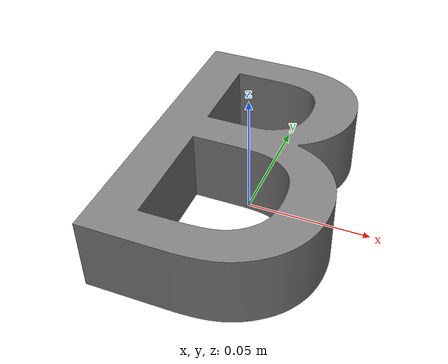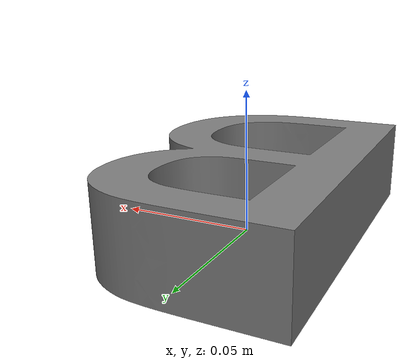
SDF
<?xml version="1.0"?>
<sdf version="1.8">
  <model name="alphabet_B">
    <static>false</static>
    <link name="link">
      <inertial>
        <pose>0 0 0.015 0 0 0</pose>
        <mass>0.02</mass>
        <inertia>
          <ixx>1.0e-5</ixx>
          <iyy>1.0e-5</iyy>
          <izz>1.0e-5</izz>
          <ixy>0</ixy>
          <ixz>0</ixz>
          <iyz>0</iyz>
        </inertia>
      </inertial>
      <collision name="box_00">
        <pose>-0.03000 0.00000 0.01500 0 0 0.00000</pose>
        <geometry>
          <box><size>0.0180 0.1200 0.0300</size></box>
        </geometry>
        <surface>
          <friction><ode><mu>1.2</mu><mu2>1.2</mu2></ode></friction>
          <contact><ode><kp>1e6</kp><kd>1e2</kd></ode></contact>
        </surface>
      </collision>
      <collision name="box_01">
        <pose>-0.00500 0.05100 0.01500 0 0 0.00000</pose>
        <geometry>
          <box><size>0.0500 0.0180 0.0300</size></box>
        </geometry>
        <surface>
          <friction><ode><mu>1.2</mu><mu2>1.2</mu2></ode></friction>
          <contact><ode><kp>1e6</kp><kd>1e2</kd></ode></contact>
        </surface>
      </collision>
      <collision name="box_02">
        <pose>-0.00500 0.00000 0.01500 0 0 0.00000</pose>
        <geometry>
          <box><size>0.0500 0.0180 0.0300</size></box>
        </geometry>
        <surface>
          <friction><ode><mu>1.2</mu><mu2>1.2</mu2></ode></friction>
          <contact><ode><kp>1e6</kp><kd>1e2</kd></ode></contact>
        </surface>
      </collision>
      <collision name="box_03">
        <pose>-0.00500 -0.05100 0.01500 0 0 0.00000</pose>
        <geometry>
          <box><size>0.0500 0.0180 0.0300</size></box>
        </geometry>
        <surface>
          <friction><ode><mu>1.2</mu><mu2>1.2</mu2></ode></friction>
          <contact><ode><kp>1e6</kp><kd>1e2</kd></ode></contact>
        </surface>
      </collision>
      <collision name="box_04">
        <pose>0.03000 0.02600 0.01500 0 0 0.00000</pose>
        <geometry>
          <box><size>0.0180 0.0400 0.0300</size></box>
        </geometry>
        <surface>
          <friction><ode><mu>1.2</mu><mu2>1.2</mu2></ode></friction>
          <contact><ode><kp>1e6</kp><kd>1e2</kd></ode></contact>
        </surface>
      </collision>
      <collision name="box_05">
        <pose>0.03000 -0.02600 0.01500 0 0 0.00000</pose>
        <geometry>
          <box><size>0.0180 0.0400 0.0300</size></box>
        </geometry>
        <surface>
          <friction><ode><mu>1.2</mu><mu2>1.2</mu2></ode></friction>
          <contact><ode><kp>1e6</kp><kd>1e2</kd></ode></contact>
        </surface>
      </collision>
      <visual name="visual">
        <geometry>
          <mesh>
            <uri>model://ur_setup_bringup/meshes/alphabet/TA-B.stl</uri>
            <scale>0.001 0.001 0.001</scale>
          </mesh>
        </geometry>
        <material>
          <ambient>0.50 0.50 0.50 1</ambient>
          <diffuse>0.50 0.50 0.50 1</diffuse>
          <specular>0.35 0.35 0.35 1</specular>
        </material>
      </visual>
    </link>
  </model>
</sdf>
